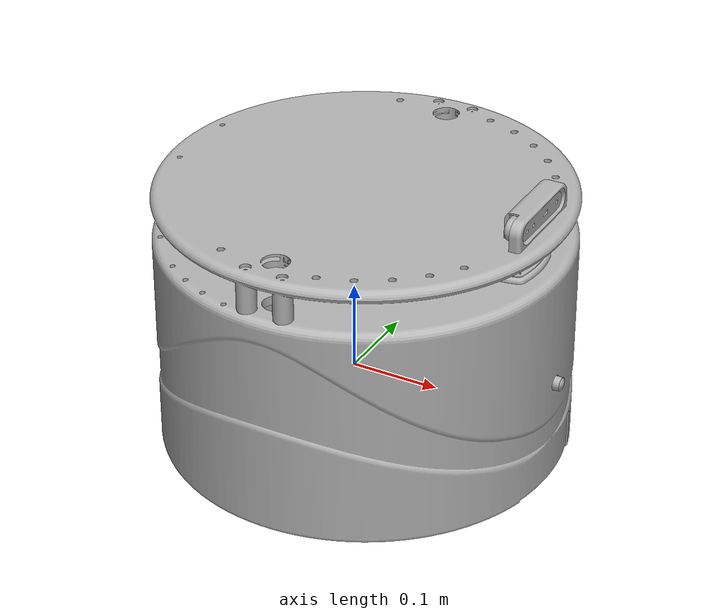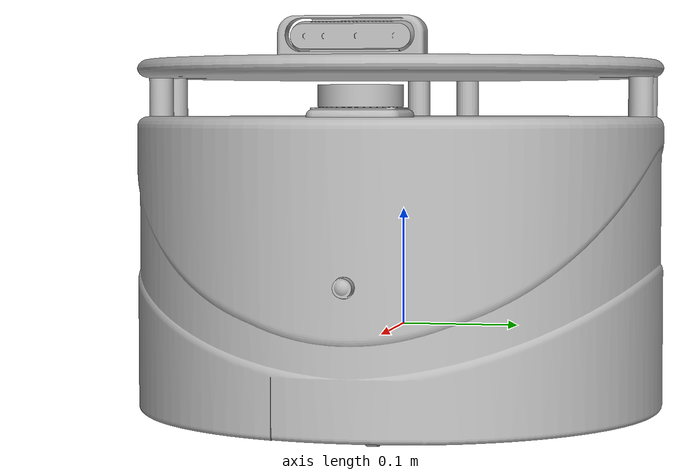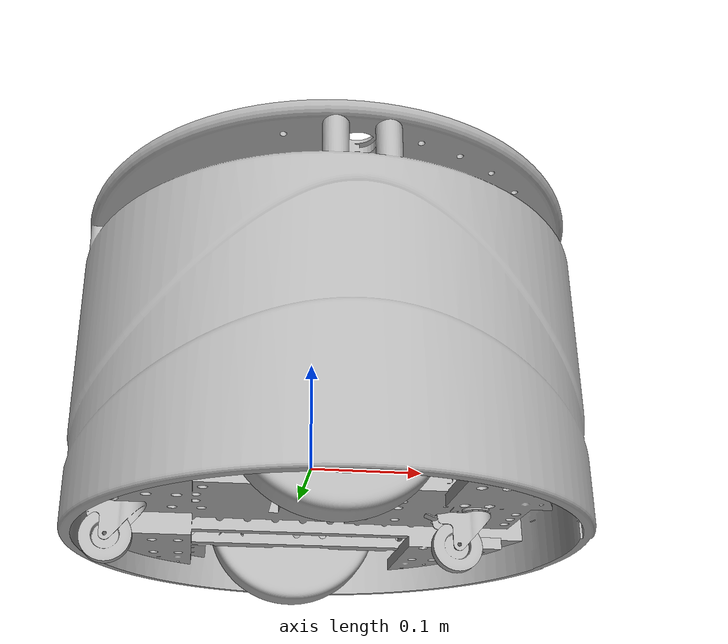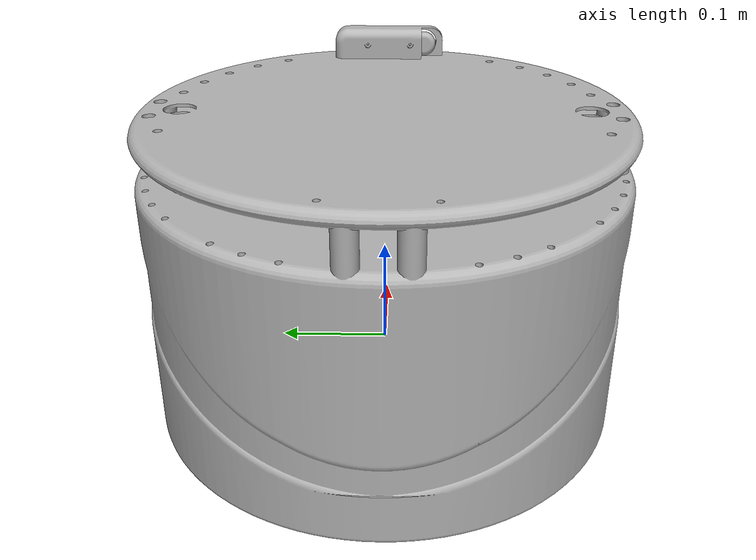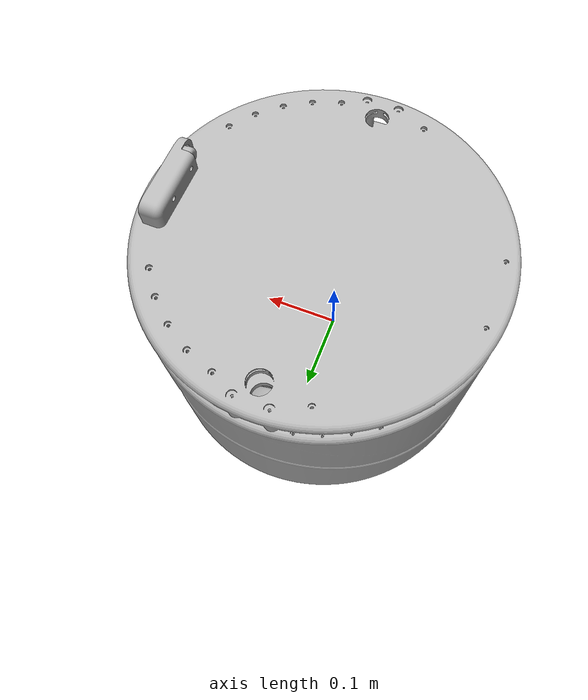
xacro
<?xml version="1.0" ?>
<robot name="robot_sbem" xmlns:xacro="http://www.ros.org/wiki/xacro">

    <xacro:arg name="use_ros2_control" default="true"/>
    <xacro:arg name="sim_mode" default="false"/>

    <xacro:include filename="robot_core.xacro" />

    <xacro:if value="$(arg use_ros2_control)">
            <xacro:include filename="ros2_control.xacro" />
    </xacro:if>

</robot>

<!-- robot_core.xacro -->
<robot name="URDF_SBEM_BASE" xmlns:xacro="http://www.ros.org/wiki/xacro">

<xacro:include filename="$(find sbem_description)/description/materials.xacro" />

<link name="base_link">
  <inertial>
    <origin xyz="0.013593795340662495 -2.6795766040815576e-05 0.012372687673449411" rpy="0 0 0"/>
    <mass value="3.27532171522102"/>
    <inertia ixx="0.028962" iyy="0.039289" izz="0.047296" ixy="-7e-06" iyz="-1e-06" ixz="-0.002355"/>
  </inertial>
  <visual>
    <origin xyz="0 0 0" rpy="0 0 0"/>
    <geometry>
      <mesh filename="package://sbem_description/meshes/base_link.stl" scale="0.001 0.001 0.001"/>
    </geometry>
    <material name="silver"/>
  </visual>
  <collision>
    <origin xyz="0 0 0" rpy="0 0 0"/>
    <geometry>
      <mesh filename="package://sbem_description/meshes/base_link.stl" scale="0.001 0.001 0.001"/>
    </geometry>
  </collision>
</link>

<link name="cover_frame_1">
  <inertial>
    <origin xyz="0.009301831240150795 0.020092107452140576 -0.07145599973646566" rpy="0 0 0"/>
    <mass value="2.7972403846371616"/>
    <inertia ixx="0.082365" iyy="0.082708" izz="0.112881" ixy="-6e-06" iyz="-0.000349" ixz="0.000984"/>
  </inertial>
  <visual>
    <origin xyz="8.6e-05 0.019119 -0.17" rpy="0 0 0"/>
    <geometry>
      <mesh filename="package://sbem_description/meshes/cover_frame_1.stl" scale="0.001 0.001 0.001"/>
    </geometry>
    <material name="silver"/>
  </visual>
  <collision>
    <origin xyz="8.6e-05 0.019119 -0.17" rpy="0 0 0"/>
    <geometry>
      <mesh filename="package://sbem_description/meshes/cover_frame_1.stl" scale="0.001 0.001 0.001"/>
    </geometry>
  </collision>
</link>

<link name="wheel_right_1">
  <inertial>
    <origin xyz="-4.1078592539778305e-06 -0.038546590185321694 -3.4548038702541736e-07" rpy="0 0 0"/>
    <mass value="1.7164767445811084"/>
    <inertia ixx="0.003266" iyy="0.005649" izz="0.003266" ixy="1e-06" iyz="0.0" ixz="-0.0"/>
  </inertial>
  <visual>
    <origin xyz="-0.0 0.131 0.003" rpy="0 0 0"/>
    <geometry>
      <mesh filename="package://sbem_description/meshes/wheel_right_1.stl" scale="0.001 0.001 0.001"/>
    </geometry>
    <material name="silver"/>
  </visual>
  <collision>
    <origin xyz="-0.0 0.131 0.003" rpy="0 0 0"/>
    <geometry>
      <mesh filename="package://sbem_description/meshes/wheel_right_1.stl" scale="0.001 0.001 0.001"/>
    </geometry>
  </collision>
</link>

<link name="wheel_left_1">
  <inertial>
    <origin xyz="-4.10785925623991e-06 0.038546590185311785 3.454803947484063e-07" rpy="0 0 0"/>
    <mass value="1.7164767445796552"/>
    <inertia ixx="0.003266" iyy="0.005649" izz="0.003266" ixy="-1e-06" iyz="0.0" ixz="0.0"/>
  </inertial>
  <visual>
    <origin xyz="0.0 -0.13 0.003" rpy="0 0 0"/>
    <geometry>
      <mesh filename="package://sbem_description/meshes/wheel_left_1.stl" scale="0.001 0.001 0.001"/>
    </geometry>
    <material name="silver"/>
  </visual>
  <collision>
    <origin xyz="0.0 -0.13 0.003" rpy="0 0 0"/>
    <geometry>
      <mesh filename="package://sbem_description/meshes/wheel_left_1.stl" scale="0.001 0.001 0.001"/>
    </geometry>
  </collision>
</link>

<link name="camera_1">
  <inertial>
    <origin xyz="0.0007560381482770717 -6.180165086932434e-05 0.0001511023550000573" rpy="0 0 0"/>
    <mass value="0.005959780420639502"/>
    <inertia ixx="0.0" iyy="0.0" izz="0.0" ixy="-0.0" iyz="0.0" ixz="0.0"/>
  </inertial>
  <visual>
    <origin xyz="-0.235119 8.6e-05 -0.0505" rpy="0 0 0"/>
    <geometry>
      <mesh filename="package://sbem_description/meshes/camera_1.stl" scale="0.001 0.001 0.001"/>
    </geometry>
    <material name="silver"/>
  </visual>
  <collision>
    <origin xyz="-0.235119 8.6e-05 -0.0505" rpy="0 0 0"/>
    <geometry>
      <mesh filename="package://sbem_description/meshes/camera_1.stl" scale="0.001 0.001 0.001"/>
    </geometry>
  </collision>
</link>

<link name="support_castor_front_2">
  <inertial>
    <origin xyz="-0.014328459289254525 1.8257642032892817e-07 -0.008560908428929016" rpy="0 0 0"/>
    <mass value="0.006272505040133622"/>
    <inertia ixx="1e-06" iyy="2e-06" izz="2e-06" ixy="-0.0" iyz="0.0" ixz="-0.0"/>
  </inertial>
  <visual>
    <origin xyz="-0.148231 0.0 0.036123" rpy="0 0 0"/>
    <geometry>
      <mesh filename="package://sbem_description/meshes/support_castor_front_2.stl" scale="0.001 0.001 0.001"/>
    </geometry>
    <material name="silver"/>
  </visual>
  <collision>
    <origin xyz="-0.148231 0.0 0.036123" rpy="0 0 0"/>
    <geometry>
      <mesh filename="package://sbem_description/meshes/support_castor_front_2.stl" scale="0.001 0.001 0.001"/>
    </geometry>
  </collision>
</link>

<link name="castor_wheel_front_1">
  <inertial>
    <origin xyz="3.541784645288981e-07 0.010133948703052667 2.1457855046980168e-07" rpy="0 0 0"/>
    <mass value="0.012935651363424177"/>
    <inertia ixx="2e-06" iyy="4e-06" izz="2e-06" ixy="-0.0" iyz="0.0" ixz="-0.0"/>
  </inertial>
  <visual>
    <origin xyz="-0.129258 0.009866 0.0661" rpy="0 0 0"/>
    <geometry>
      <mesh filename="package://sbem_description/meshes/castor_wheel_front_1.stl" scale="0.001 0.001 0.001"/>
    </geometry>
    <material name="silver"/>
  </visual>
  <collision>
    <origin xyz="-0.129258 0.009866 0.0661" rpy="0 0 0"/>
    <geometry>
      <mesh filename="package://sbem_description/meshes/castor_wheel_front_1.stl" scale="0.001 0.001 0.001"/>
    </geometry>
  </collision>
</link>

<link name="support_castor_back_1">
  <inertial>
    <origin xyz="-0.014328774710402836 -3.932261495924688e-08 -0.008560908428929745" rpy="0 0 0"/>
    <mass value="0.006272505040133622"/>
    <inertia ixx="1e-06" iyy="2e-06" izz="2e-06" ixy="-0.0" iyz="0.0" ixz="-0.0"/>
  </inertial>
  <visual>
    <origin xyz="0.154231 -7.6e-05 0.036123" rpy="0 0 0"/>
    <geometry>
      <mesh filename="package://sbem_description/meshes/support_castor_back_1.stl" scale="0.001 0.001 0.001"/>
    </geometry>
    <material name="silver"/>
  </visual>
  <collision>
    <origin xyz="0.154231 -7.6e-05 0.036123" rpy="0 0 0"/>
    <geometry>
      <mesh filename="package://sbem_description/meshes/support_castor_back_1.stl" scale="0.001 0.001 0.001"/>
    </geometry>
  </collision>
</link>

<link name="castor_wheel_back_1">
  <inertial>
    <origin xyz="3.875731618974143e-08 0.010133726804017166 2.145785498730568e-07" rpy="0 0 0"/>
    <mass value="0.012935651363424177"/>
    <inertia ixx="2e-06" iyy="4e-06" izz="2e-06" ixy="-0.0" iyz="0.0" ixz="-0.0"/>
  </inertial>
  <visual>
    <origin xyz="0.173204 0.00979 0.0661" rpy="0 0 0"/>
    <geometry>
      <mesh filename="package://sbem_description/meshes/castor_wheel_back_1.stl" scale="0.001 0.001 0.001"/>
    </geometry>
    <material name="silver"/>
  </visual>
  <collision>
    <origin xyz="0.173204 0.00979 0.0661" rpy="0 0 0"/>
    <geometry>
      <mesh filename="package://sbem_description/meshes/castor_wheel_back_1.stl" scale="0.001 0.001 0.001"/>
    </geometry>
  </collision>
</link>

<link name="laser_frame">
  <inertial>
    <origin xyz="-4.802109999924031e-07 3.2614800062540994e-07 0.008500000000000146" rpy="0 0 0"/>
    <mass value="0.08598231018949315"/>
    <inertia ixx="2.6e-05" iyy="2.6e-05" izz="4.9e-05" ixy="-0.0" iyz="0.0" ixz="-0.0"/>
  </inertial>
  <visual>
    <origin xyz="-0.176783 0.000173 -0.1882" rpy="0 0 0"/>
    <geometry>
      <mesh filename="package://sbem_description/meshes/laser_frame_1.stl" scale="0.001 0.001 0.001"/>
    </geometry>
    <material name="silver"/>
  </visual>
  <collision>
    <origin xyz="-0.176783 0.000173 -0.1882" rpy="0 0 0"/>
    <geometry>
      <mesh filename="package://sbem_description/meshes/laser_frame_1.stl" scale="0.001 0.001 0.001"/>
    </geometry>
  </collision>
</link>

<link name="imu_1">
  <inertial>
    <origin xyz="-0.000500389353186954 -8.222275792329365e-11 0.002499999999999905" rpy="0 0 0"/>
    <mass value="0.0003900000001178686"/>
    <inertia ixx="0.0" iyy="0.0" izz="0.0" ixy="0.0" iyz="-0.0" ixz="0.0"/>
  </inertial>
  <visual>
    <origin xyz="-0.015326 0.0 -0.03" rpy="0 0 0"/>
    <geometry>
      <mesh filename="package://sbem_description/meshes/imu_1.stl" scale="0.001 0.001 0.001"/>
    </geometry>
    <material name="silver"/>
  </visual>
  <collision>
    <origin xyz="-0.015326 0.0 -0.03" rpy="0 0 0"/>
    <geometry>
      <mesh filename="package://sbem_description/meshes/imu_1.stl" scale="0.001 0.001 0.001"/>
    </geometry>
  </collision>
</link>

<link name="case_realsensed415_1">
  <inertial>
    <origin xyz="0.18735134281404422 0.009804464840611201 0.01353151407032474" rpy="0 0 0"/>
    <mass value="0.01393318755472633"/>
    <inertia ixx="1.8e-05" iyy="3e-06" izz="1.8e-05" ixy="1e-06" iyz="0.0" ixz="-0.0"/>
  </inertial>
  <visual>
    <origin xyz="-0.014119 8.6e-05 -0.228" rpy="0 0 0"/>
    <geometry>
      <mesh filename="package://sbem_description/meshes/case_realsensed415_1.stl" scale="0.001 0.001 0.001"/>
    </geometry>
    <material name="silver"/>
  </visual>
  <collision>
    <origin xyz="-0.014119 8.6e-05 -0.228" rpy="0 0 0"/>
    <geometry>
      <mesh filename="package://sbem_description/meshes/case_realsensed415_1.stl" scale="0.001 0.001 0.001"/>
    </geometry>
  </collision>
</link>

<link name="camera0_link">
  <inertial>
    <origin xyz="0.009980749747240614 -0.007970490230886512 -0.0002735366586204546" rpy="0 0 0"/>
    <mass value="0.1125947025550983"/>
    <inertia ixx="8.7e-05" iyy="8e-06" izz="8.6e-05" ixy="-0.0" iyz="0.0" ixz="0.0"/>
  </inertial>
  <visual>
    <origin xyz="-0.195119 -0.007879 -0.241995" rpy="0 0 0"/>
    <geometry>
      <mesh filename="package://sbem_description/meshes/realsenseD415_1.stl" scale="0.001 0.001 0.001"/>
    </geometry>
    <material name="silver"/>
  </visual>
  <collision>
    <origin xyz="-0.195119 -0.007879 -0.241995" rpy="0 0 0"/>
    <geometry>
      <mesh filename="package://sbem_description/meshes/realsenseD415_1.stl" scale="0.001 0.001 0.001"/>
    </geometry>
  </collision>
</link>

<joint name="joint_base" type="fixed">
  <origin xyz="-8.6e-05 -0.019119 0.17" rpy="0 0 0"/>
  <parent link="base_link"/>
  <child link="cover_frame_1"/>
</joint>

<joint name="right_wheel_joint" type="continuous">
  <origin xyz="0.0 -0.131 -0.003" rpy="0 0 0"/>
  <parent link="base_link"/>
  <child link="wheel_right_1"/>
  <axis xyz="-0.0 1.0 -0.0"/>
</joint>

<joint name="left_wheel_joint" type="continuous">
  <origin xyz="0.0 0.13 -0.003" rpy="0 0 0"/>
  <parent link="base_link"/>
  <child link="wheel_left_1"/>
  <axis xyz="-0.0 1.0 -0.0"/>
</joint>

<joint name="joint_low_camera" type="fixed">
  <origin xyz="0.235205 0.019033 -0.1195" rpy="0 0 0"/>
  <parent link="cover_frame_1"/>
  <child link="camera_1"/>
</joint>

<joint name="joint_castor_wheel_front" type="continuous">
  <origin xyz="0.148231 0.0 -0.036123" rpy="0 0 0"/>
  <parent link="base_link"/>
  <child link="support_castor_front_2"/>
  <axis xyz="0.0 -0.0 -1.0"/>
</joint>

<joint name="joint_castor_wheel_front_2" type="continuous">
  <origin xyz="-0.018973 -0.009866 -0.029977" rpy="0 0 0"/>
  <parent link="support_castor_front_2"/>
  <child link="castor_wheel_front_1"/>
  <axis xyz="-0.0 1.0 -0.0"/>
</joint>

<joint name="joint_castor_wheel_back" type="continuous">
  <origin xyz="-0.154231 7.6e-05 -0.036123" rpy="0 0 0"/>
  <parent link="base_link"/>
  <child link="support_castor_back_1"/>
  <axis xyz="0.0 -0.0 -1.0"/>
</joint>

<joint name="joint_castor_wheel_back_2" type="continuous">
  <origin xyz="-0.018973 -0.009866 -0.029977" rpy="0 0 0"/>
  <parent link="support_castor_back_1"/>
  <child link="castor_wheel_back_1"/>
  <axis xyz="-0.0 1.0 -0.0"/>
</joint>

<joint name="laser_joint" type="fixed">
  <origin xyz="0.176869 0.018946 0.0182" rpy="0 0 0"/>
  <parent link="cover_frame_1"/>
  <child link="laser_frame"/>
</joint>

<joint name="joint_imu" type="fixed">
  <origin xyz="0.015326 0.0 0.03" rpy="0 0 0"/>
  <parent link="base_link"/>
  <child link="imu_1"/>
</joint>

<joint name="joint_case_D415" type="fixed">
  <origin xyz="0.014205 0.019033 0.058" rpy="0 0 0"/>
  <parent link="cover_frame_1"/>
  <child link="case_realsensed415_1"/>
</joint>

<joint name="camera_joint" type="fixed">
  <origin xyz="0.181 0.007965 0.013995" rpy="0 0 0"/>
  <parent link="case_realsensed415_1"/>
  <child link="camera0_link"/>
</joint>

</robot>

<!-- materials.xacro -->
<robot name="URDF_SBEM_BASE" xmlns:xacro="http://www.ros.org/wiki/xacro" >

<material name="silver">
  <color rgba="0.700 0.700 0.700 1.000"/>
</material>

</robot>
